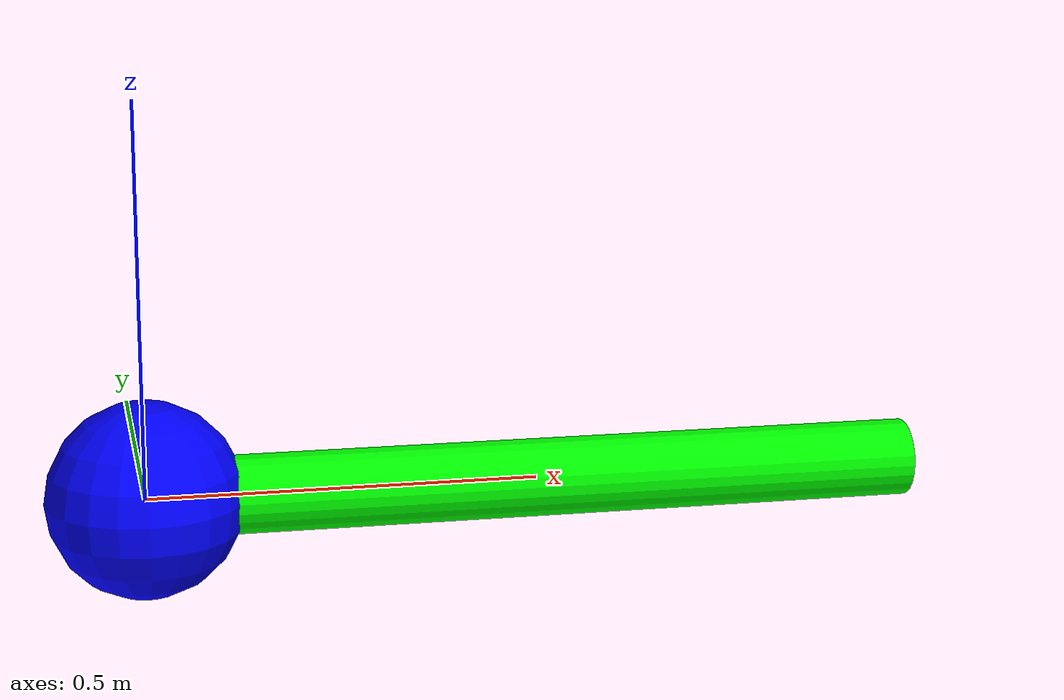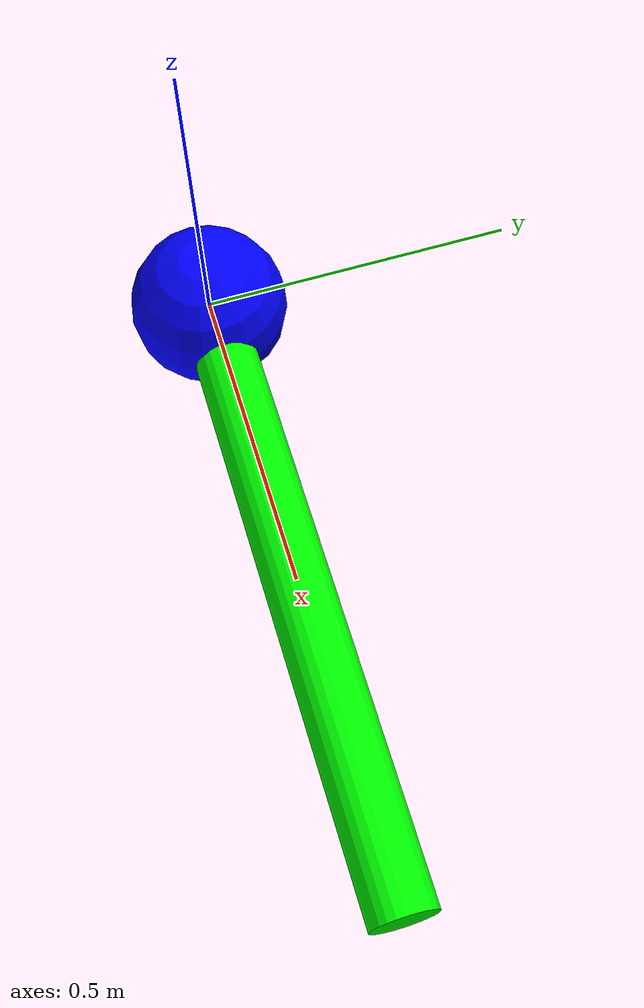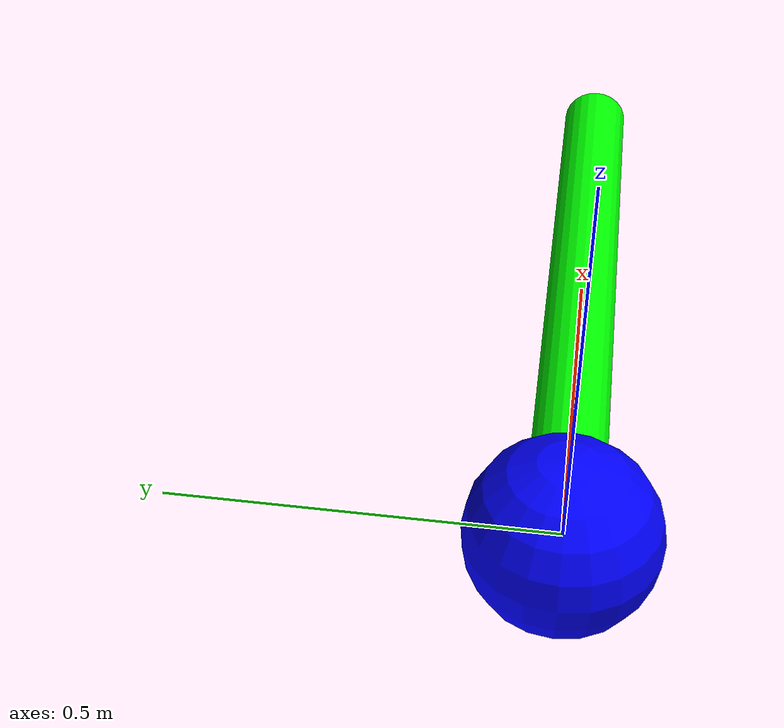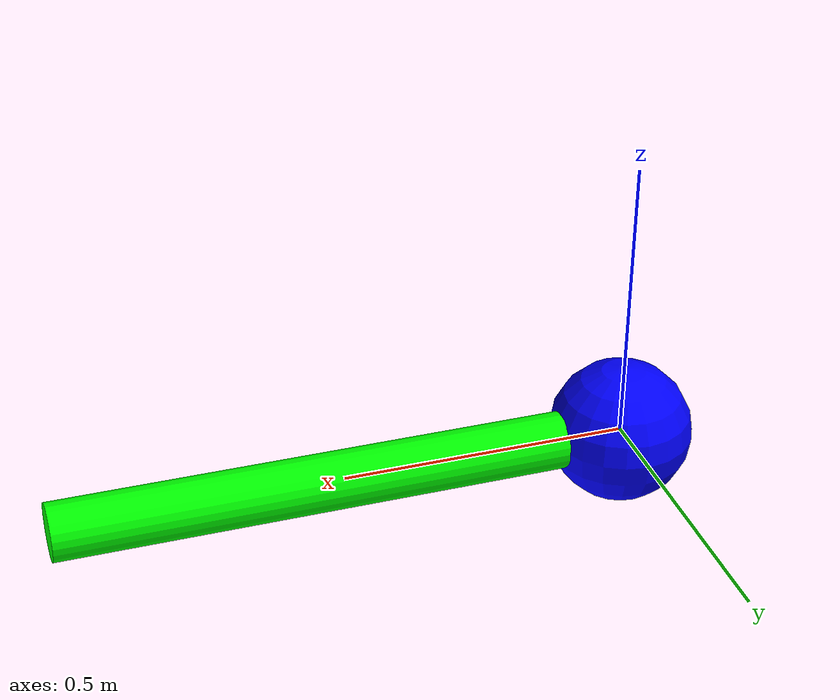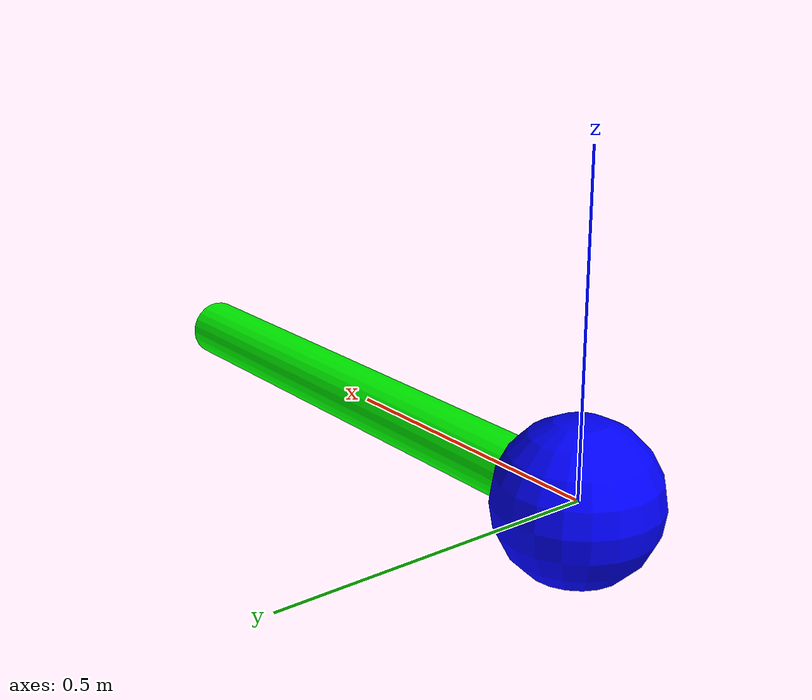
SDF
<?xml version="1.0"?>
<sdf version="1.7">
  <model name="acrobot">
    <!-- This sdf file produces a model with the default parameters documented
         in AcrobotParameters in make_acrobot_plant.h.
         They MUST be kept in sync. -->
    <link name="Link1">
      <!-- The origin of the Link1 frame is defined to be coincident with
           the origin of the x-z plane in the world frame. -->
      <pose>0 0 0 0 0 0</pose>
      <inertial>
        <pose>0.5 0 0 0 0 0</pose>
        <mass>1</mass>
        <!-- This inertia is based on a solid cylinder with
             radius=0.001 meters and height=1.0 meters. -->
        <!-- For this model we could make izz = 0 however, sdformat will throw
             an exception. -->
        <inertia>
          <ixx>5e-7</ixx>
          <iyy>0.083</iyy>
          <izz>0.083</izz>
          <ixy>0</ixy>
          <ixz>0</ixz>
          <iyz>0</iyz>
        </inertia>
      </inertial>
      <visual name="Link1_visual">
        <pose>0.5 0 0 0 1.5708 0</pose>
        <geometry>
          <cylinder>
            <length>1.0</length>
            <radius>0.05</radius>
          </cylinder>
        </geometry>
        <material>
          <diffuse>0 1 0 1</diffuse>
        </material>
      </visual>
      <!-- A visual to show the link's pivot point -->
      <visual name="Link1_pivot_visual">
        <!-- Pose of the sphere used for visual in Link1's frame -->
        <geometry>
          <sphere>
            <radius>0.125</radius>
          </sphere>
        </geometry>
        <material>
          <diffuse>0 0 1 1</diffuse>
        </material>
      </visual>
    </link>
    <joint name="ShoulderJoint" type="revolute">
      <child>Link1</child>
      <parent>world</parent>
      <axis>
        <xyz expressed_in="__model__">0 0 1</xyz>
        <limit>
          <!-- Drake parses a zero effort joint as an un-actuated joint. -->
        </limit>
        <dynamics>
          <damping>1.1</damping>
        </dynamics>
      </axis>
    </joint>
    <frame name="end_effector" attached_to="Link1">
      <!-- The pose of the end_effector frame relative to the Link1 frame -->
      <!-- Assuming the length of Link1 is 1.0, the end effector is at the end of the link -->
      <pose>1 0 0 0 0 0</pose>
    </frame>
  </model>
</sdf>
